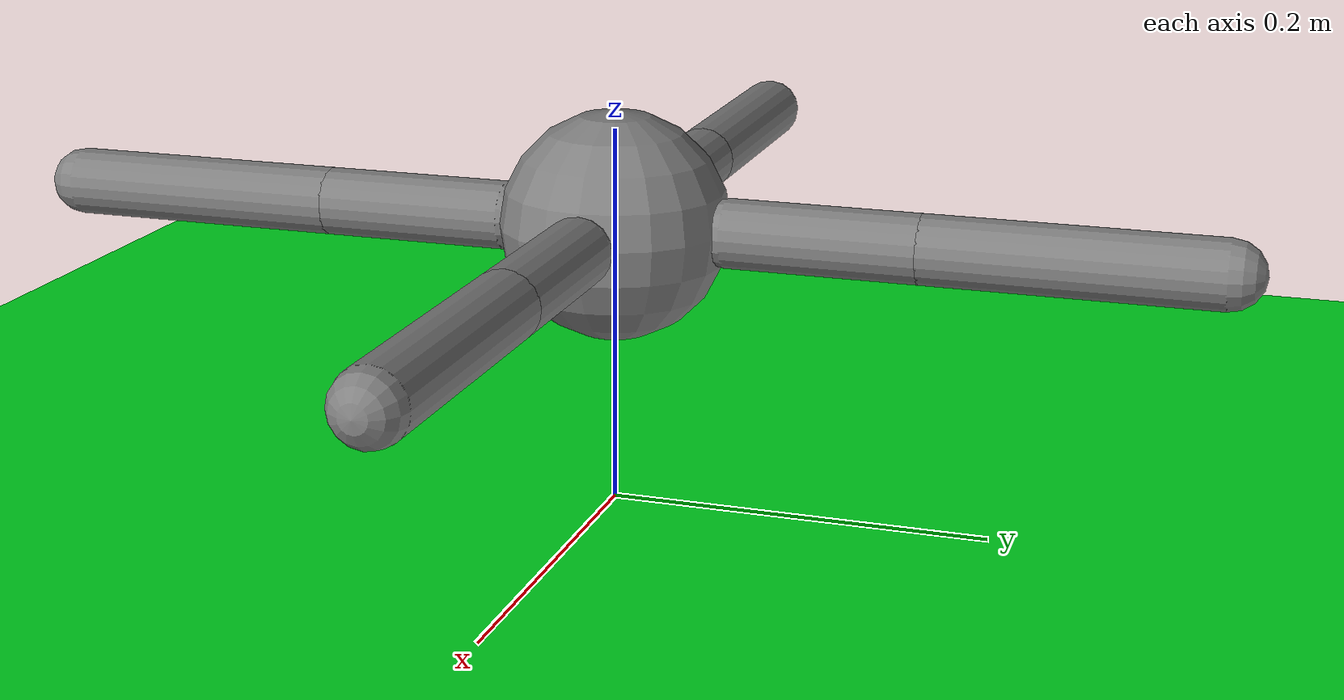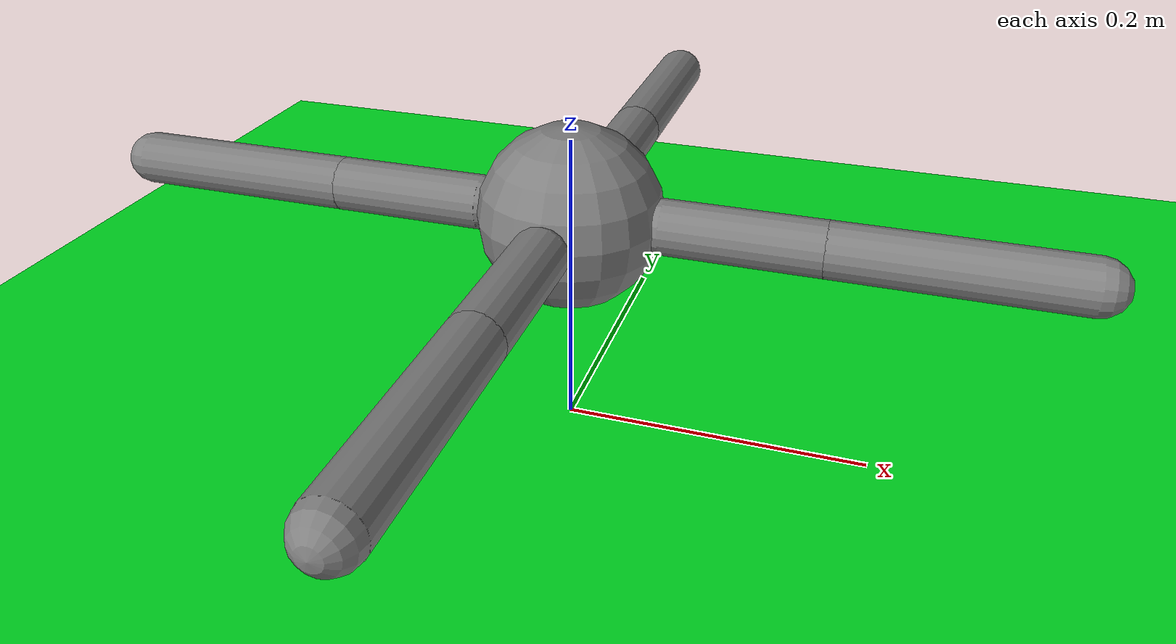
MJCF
<mujoco model="quadruped">
    <default>
        <joint type="hinge" damping="1"/>
        <position kp="10"/>
        <geom density="1000" contype="1" conaffinity="1" friction="1 0.005 0.0001"/>
    </default>

    <worldbody>
        <light name="top" pos="0 0 4"/>
        <camera name="plan" pos="0 0 40" quat="1 0 0 0" fovy="40"/>
        <camera name="zoom_plan" pos="0 0 40" quat="1 0 0 0" fovy="5"/>
        <camera name="side" pos="2 0 0.2" quat="1 1 1 1"/>

        <body name="plain">
            <geom name="ground" type="plane" size="0 0 0.1" rgba="0.00 0.91 0.14 1"/>
        </body>

        <body name="quadruped" pos="0 0 0.15">
            <freejoint/>
            <geom name="quadruped_body" type="sphere" size="0.06"/>

            <!-- front -->
            <body name="leg1_seg1" pos="0.06 0 0">
                <joint name="leg1_yaw" axis="0 0 1" range="-60 60"/>
                <joint name="leg1_pitch" axis="0 -1 0" range="0 90"/>

                <geom type="capsule" size="0.018" fromto="0 0 0 0.1 0 0"/>

                <body name="leg1_seg2" pos="0.1 0 0">
                    <joint name="leg1_knee" axis="0 1 0" range="0 180"/>
                    <geom type="capsule" size="0.018" fromto="0 0 0 0.15 0 0"/>
                    <site name="foot1" pos="0.1 0 0" size="0.018" rgba="1 1 1 0"/>
                </body>
            </body>

            <!-- right -->
            <body name="leg2_seg1" pos="0 0.06 0">
                <joint name="leg2_yaw" axis="0 0 1" range="-60 60"/>
                <joint name="leg2_pitch" axis="1 0 0" range="0 90"/>

                <geom type="capsule" size="0.018" fromto="0 0 0 0 0.1 0"/>

                <body name="leg2_seg2" pos="0 0.1 0">
                    <joint name="leg2_knee" axis="-1 0 0" range="0 180"/>
                    <geom type="capsule" size="0.018" fromto="0 0 0 0 0.15 0"/>
                    <site name="foot2" pos="0 0.1 0" size="0.018" rgba="1 1 1 0"/>
                </body>
            </body>

            <!-- back -->
            <body name="leg3_seg1" pos="-0.06 0 0">
                <joint name="leg3_yaw" axis="0 0 1" range="-60 60"/>
                <joint name="leg3_pitch" axis="0 1 0" range="0 90"/>

                <geom type="capsule" size="0.018" fromto="0 0 0 -0.1 0 0"/>

                <body name="leg3_seg2" pos="-0.1 0 0">
                    <joint name="leg3_knee" axis="0 -1 0" range="0 180"/>
                    <geom type="capsule" size="0.018" fromto="0 0 0 -0.15 0 0"/>
                    <site name="foot3" pos="-0.1 0 0" size="0.018" rgba="1 1 1 0"/>
                </body>
            </body>

            <!-- left -->
            <body name="leg4_seg1" pos="0 -0.06 0">
                <joint name="leg4_yaw" axis="0 0 1" range="-60 60"/>
                <joint name="leg4_pitch" axis="-1 0 0" range="0 90"/>

                <geom type="capsule" size="0.018" fromto="0 0 0 0 -0.1 0"/>

                <body name="leg4_seg2" pos="0 -0.1 0">
                    <joint name="leg4_knee" axis="1 0 0" range="0 180"/>
                    <geom type="capsule" size="0.018" fromto="0 0 0 0 -0.15 0"/>
                    <site name="foot4" pos="0 -0.1 0" size="0.018" rgba="1 1 1 0"/>
                </body>
            </body>
        </body>
    </worldbody>

    <contact>
        <exclude body1="quadruped" body2="leg1_seg1"/>
        <exclude body1="quadruped" body2="leg2_seg1"/>
        <exclude body1="quadruped" body2="leg3_seg1"/>
        <exclude body1="quadruped" body2="leg4_seg1"/>

        <exclude body1="leg1_seg1" body2="leg1_seg2"/>
        <exclude body1="leg2_seg1" body2="leg2_seg2"/>
        <exclude body1="leg3_seg1" body2="leg3_seg2"/>
        <exclude body1="leg4_seg1" body2="leg4_seg2"/>
    </contact>

    <actuator>
        <!-- front right -->
        <position joint="leg1_yaw" inheritrange="1"/>
        <position joint="leg2_yaw" inheritrange="1"/>

        <position joint="leg1_pitch" inheritrange="1"/>
        <position joint="leg2_pitch" inheritrange="1"/>

        <position joint="leg1_knee" inheritrange="1"/>
        <position joint="leg2_knee" inheritrange="1"/>

        <!-- back left -->
        <position joint="leg3_yaw" inheritrange="1"/>
        <position joint="leg4_yaw" inheritrange="1"/>

        <position joint="leg3_pitch" inheritrange="1"/>
        <position joint="leg4_pitch" inheritrange="1"/>

        <position joint="leg3_knee" inheritrange="1"/>
        <position joint="leg4_knee" inheritrange="1"/>
    </actuator>

    <sensor>
        <touch name="leg1_sensor" site="foot1"/>
        <touch name="leg2_sensor" site="foot2"/>
        <touch name="leg3_sensor" site="foot3"/>
        <touch name="leg4_sensor" site="foot4"/>
    </sensor>
</mujoco>
